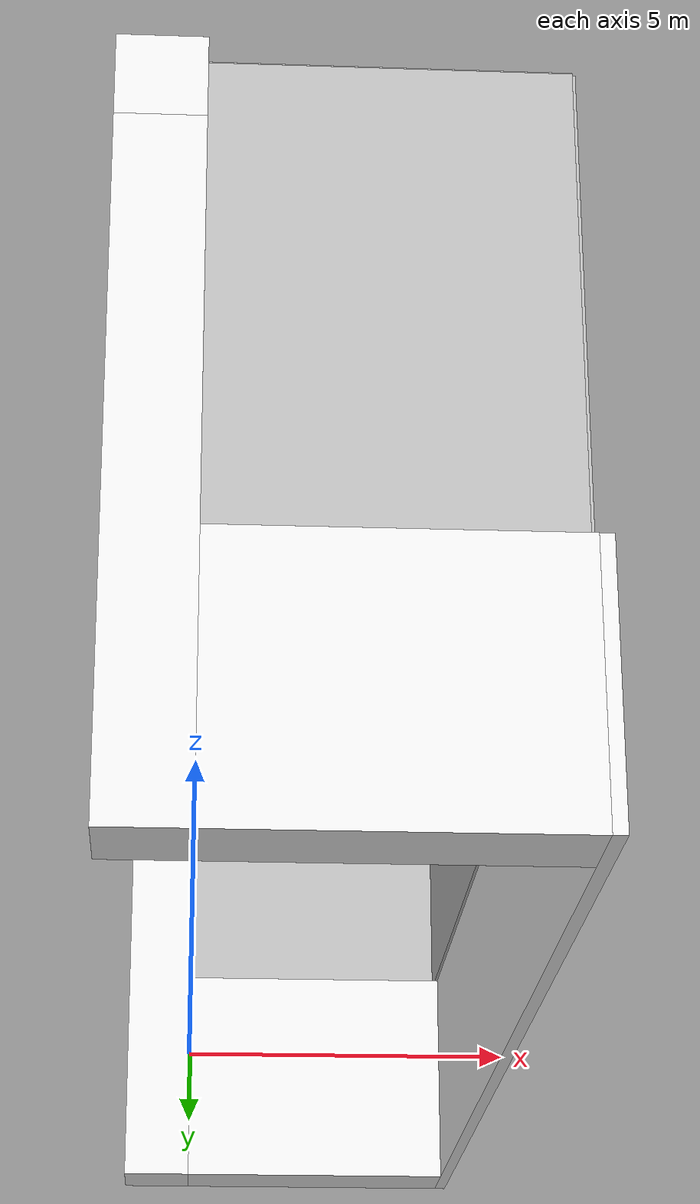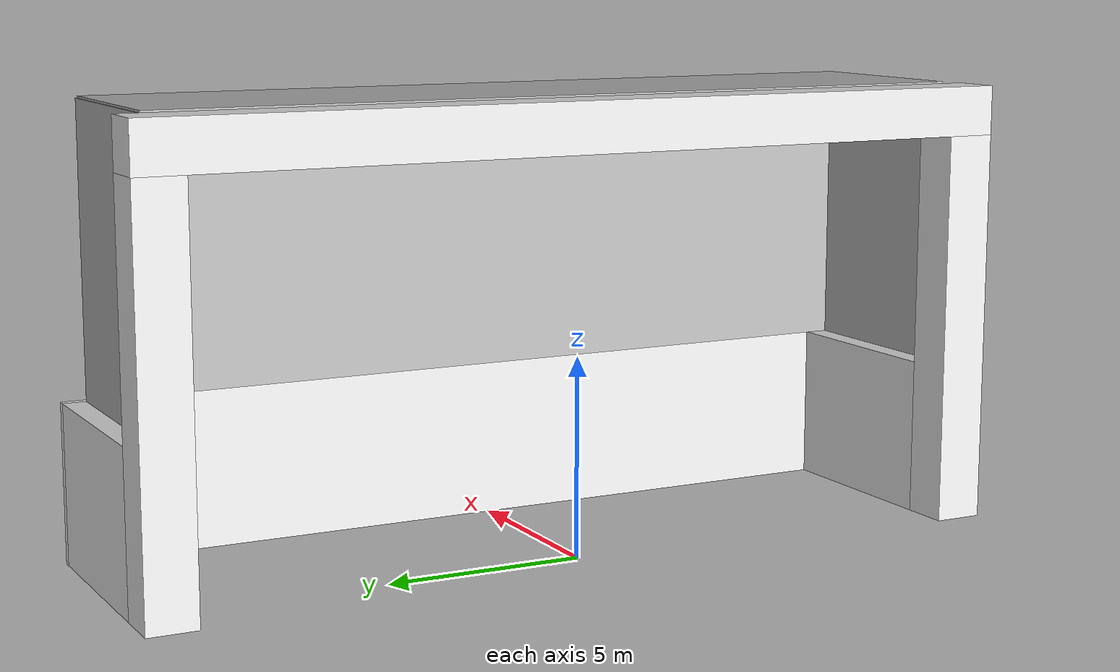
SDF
<?xml version="1.0" ?>
<sdf version="1.4">
  <model name="RoboCup15_MSL_Goal">
    <static>true</static>

    <link name="left_post">
      <pose>-0.625 10.625 5.0 0 0 0</pose>
      <collision name="collision">
        <geometry><box><size>1.25 1.25 10.0</size></box></geometry>
      </collision>
      <visual name="visual">
        <geometry><box><size>1.25 1.25 10.0</size></box></geometry>
        <material><script><uri>model://MSL_models15/RoboCup15_MSL_Goal/materials/scripts/gazebo.material</uri><name>Gazebo/White</name></script></material>
      </visual>
    </link>

    <link name="right_post">
      <pose>-0.625 -10.625 5.0 0 0 0</pose>
      <collision name="collision">
        <geometry><box><size>1.25 1.25 10.0</size></box></geometry>
      </collision>
      <visual name="visual">
        <geometry><box><size>1.25 1.25 10.0</size></box></geometry>
        <material><script><uri>model://MSL_models15/RoboCup15_MSL_Goal/materials/scripts/gazebo.material</uri><name>Gazebo/White</name></script></material>
      </visual>
    </link>

    <link name="crossbar">
      <pose>-0.625 0 10.625 0 0 0</pose>
      <collision name="collision">
        <geometry><box><size>1.25 22.5 1.25</size></box></geometry>
      </collision>
      <visual name="visual">
        <geometry><box><size>1.25 22.5 1.25</size></box></geometry>
        <material><script><uri>model://MSL_models15/RoboCup15_MSL_Goal/materials/scripts/gazebo.material</uri><name>Gazebo/White</name></script></material>
      </visual>
    </link>

    <link name="left_support_horiz_lower">
      <pose>2.5 10.625 2.0 0 0 0</pose>
      <collision name="collision">
        <geometry><box><size>5.0 1.25 4.0</size></box></geometry>
      </collision>
      <visual name="visual">
        <geometry><box><size>5.0 1.25 4.0</size></box></geometry>
        <material><script><uri>model://MSL_models15/RoboCup15_MSL_Goal/materials/scripts/gazebo.material</uri><name>Gazebo/White</name></script></material>
      </visual>
    </link>

    <link name="right_support_horiz_lower">
      <pose>2.5 -10.625 2.0 0 0 0</pose>
      <collision name="collision">
        <geometry><box><size>5.0 1.25 4.0</size></box></geometry>
      </collision>
      <visual name="visual">
        <geometry><box><size>5.0 1.25 4.0</size></box></geometry>
        <material><script><uri>model://MSL_models15/RoboCup15_MSL_Goal/materials/scripts/gazebo.material</uri><name>Gazebo/White</name></script></material>
      </visual>
    </link>

    <link name="center_support_horiz_lower">
      <pose>5.1 0 2.0 0 0 0</pose>
      <collision name="collision">
        <geometry><box><size>0.2 22.5 4.0</size></box></geometry>
      </collision>
      <visual name="visual">
        <geometry><box><size>0.2 22.5 4.0</size></box></geometry>
        <material><script><uri>model://MSL_models15/RoboCup15_MSL_Goal/materials/scripts/gazebo.material</uri><name>Gazebo/White</name></script></material>
      </visual>
    </link>

    <link name="center_net">
      <pose>5.0 0 7.625 0 0 0</pose>
      <collision name="collision">
        <geometry><box><size>0.1 21.25 7.25</size></box></geometry>
      </collision>
      <visual name="visual">
        <geometry><box><size>0.1 21.25 7.25</size></box></geometry>
        <material>
          <script>
            <uri>model://MSL_models15/RoboCup15_MSL_Goal/materials/scripts/</uri>
            <uri>model://MSL_models15/RoboCup15_MSL_Goal/materials/textures/</uri>
            <name>RoboCup/Net</name>
          </script>
        </material>
      </visual>
    </link>

    <link name="left_net">
      <pose>2.5 10.625 7.625 0 0 0</pose>
      <collision name="collision">
        <geometry><box><size>5.0 0.1 7.25</size></box></geometry>
      </collision>
      <visual name="visual">
        <geometry><box><size>5.0 0.1 7.25</size></box></geometry>
        <material>
          <script>
            <uri>model://MSL_models15/RoboCup15_MSL_Goal/materials/scripts/</uri>
            <uri>model://MSL_models15/RoboCup15_MSL_Goal/materials/textures/</uri>
            <name>RoboCup/Net</name>
          </script>
        </material>
      </visual>
    </link>

    <link name="right_net">
      <pose>2.5 -10.625 7.625 0 0 0</pose>
      <collision name="collision">
        <geometry><box><size>5.0 0.1 7.25</size></box></geometry>
      </collision>
      <visual name="visual">
        <geometry><box><size>5.0 0.1 7.25</size></box></geometry>
        <material>
          <script>
            <uri>model://MSL_models15/RoboCup15_MSL_Goal/materials/scripts/</uri>
            <uri>model://MSL_models15/RoboCup15_MSL_Goal/materials/textures/</uri>
            <name>RoboCup/Net</name>
          </script>
        </material>
      </visual>
    </link>

    <link name="upper_net">
      <pose>2.5 0 11.25 0 0 0</pose>
      <collision name="collision">
        <geometry><box><size>5.0 21.25 0.1</size></box></geometry>
      </collision>
      <visual name="visual">
        <geometry><box><size>5.0 21.25 0.1</size></box></geometry>
        <material>
          <script>
            <uri>model://MSL_models15/RoboCup15_MSL_Goal/materials/scripts/</uri>
            <uri>model://MSL_models15/RoboCup15_MSL_Goal/materials/textures/</uri>
            <name>RoboCup/Net</name>
          </script>
        </material>
      </visual>
    </link>

  </model>
</sdf>
